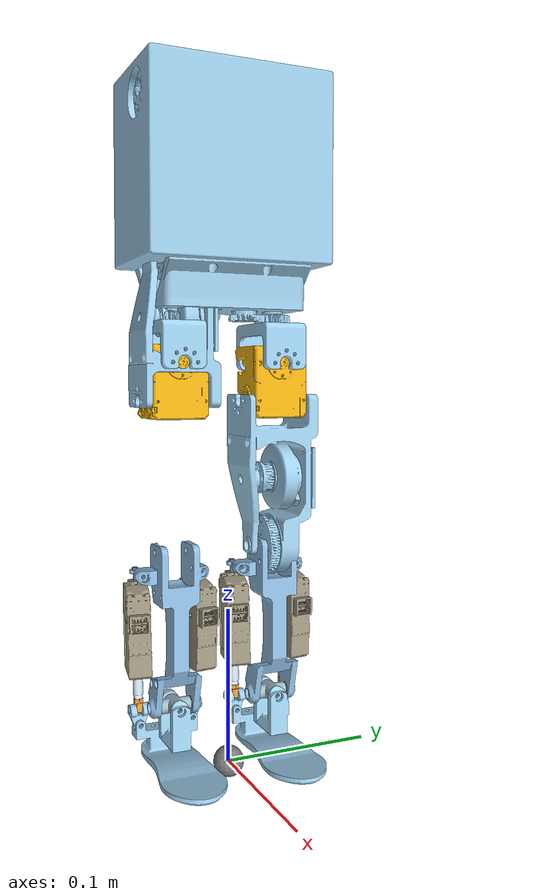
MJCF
<mujoco model="toddlerbot_legs">
  <compiler angle="radian" />
  <asset>
    <mesh name="body_link_visual" file="../assemblies/no_body/meshes/body_link_visual.stl" />
    <mesh name="body_link_collision" file="collisions/body_link_collision.stl" />
    <mesh name="left_hip_yaw_link_visual" file="../assemblies/left_3R+RH5_leg/meshes/left_hip_yaw_link_visual.stl" />
    <mesh name="left_hip_roll_link_visual" file="../assemblies/left_3R+RH5_leg/meshes/left_hip_roll_link_visual.stl" />
    <mesh name="left_hip_roll_link_collision" file="collisions/left_hip_roll_link_collision.stl" />
    <mesh name="left_hip_pitch_link_visual" file="../assemblies/left_3R+RH5_leg/meshes/left_hip_pitch_link_visual.stl" />
    <mesh name="left_hip_pitch_link_collision" file="collisions/left_hip_pitch_link_collision.stl" />
    <mesh name="left_calf_link_visual" file="../assemblies/left_3R+RH5_leg/meshes/left_calf_link_visual.stl" />
    <mesh name="left_calf_link_collision" file="collisions/left_calf_link_collision.stl" />
    <mesh name="left_ank_pitch_link_visual" file="../assemblies/left_3R+RH5_leg/meshes/left_ank_pitch_link_visual.stl" />
    <mesh name="left_ank_roll_link_visual" file="../assemblies/left_3R+RH5_leg/meshes/left_ank_roll_link_visual.stl" />
    <mesh name="left_ank_roll_link_collision" file="../assemblies/left_3R+RH5_leg/meshes/left_ank_roll_link_collision.stl" />
    <mesh name="left_ank_rr_link_visual" file="../assemblies/left_3R+RH5_leg/meshes/left_ank_rr_link_visual.stl" />
    <mesh name="left_12lf_rod_end_visual" file="../assemblies/left_3R+RH5_leg/meshes/left_12lf_rod_end_visual.stl" />
    <mesh name="left_ank_rr_link_2_visual" file="../assemblies/left_3R+RH5_leg/meshes/left_ank_rr_link_2_visual.stl" />
    <mesh name="left_12lf_rod_end_2_visual" file="../assemblies/left_3R+RH5_leg/meshes/left_12lf_rod_end_2_visual.stl" />
    <mesh name="left_ball_joint_container_visual" file="../assemblies/left_3R+RH5_leg/meshes/left_ball_joint_container_visual.stl" />
    <mesh name="left_ball_joint_ball_visual" file="../assemblies/left_3R+RH5_leg/meshes/left_ball_joint_ball_visual.stl" />
    <mesh name="left_12lf_visual" file="../assemblies/left_3R+RH5_leg/meshes/left_12lf_visual.stl" />
    <mesh name="left_12lf_rod_visual" file="../assemblies/left_3R+RH5_leg/meshes/left_12lf_rod_visual.stl" />
    <mesh name="left_ball_joint_container_2_visual" file="../assemblies/left_3R+RH5_leg/meshes/left_ball_joint_container_2_visual.stl" />
    <mesh name="left_ball_joint_ball_2_visual" file="../assemblies/left_3R+RH5_leg/meshes/left_ball_joint_ball_2_visual.stl" />
    <mesh name="left_12lf_2_visual" file="../assemblies/left_3R+RH5_leg/meshes/left_12lf_2_visual.stl" />
    <mesh name="left_12lf_rod_2_visual" file="../assemblies/left_3R+RH5_leg/meshes/left_12lf_rod_2_visual.stl" />
    <mesh name="right_hip_yaw_link_visual" file="../assemblies/right_3R+RH5_leg/meshes/right_hip_yaw_link_visual.stl" />
    <mesh name="right_hip_roll_link_visual" file="../assemblies/right_3R+RH5_leg/meshes/right_hip_roll_link_visual.stl" />
    <mesh name="right_hip_roll_link_collision" file="collisions/right_hip_roll_link_collision.stl" />
    <mesh name="right_hip_pitch_link_visual" file="../assemblies/right_3R+RH5_leg/meshes/right_hip_pitch_link_visual.stl" />
    <mesh name="right_hip_pitch_link_collision" file="collisions/right_hip_pitch_link_collision.stl" />
    <mesh name="right_calf_link_visual" file="../assemblies/right_3R+RH5_leg/meshes/right_calf_link_visual.stl" />
    <mesh name="right_calf_link_collision" file="collisions/right_calf_link_collision.stl" />
    <mesh name="right_ank_pitch_link_visual" file="../assemblies/right_3R+RH5_leg/meshes/right_ank_pitch_link_visual.stl" />
    <mesh name="right_ank_roll_link_visual" file="../assemblies/right_3R+RH5_leg/meshes/right_ank_roll_link_visual.stl" />
    <mesh name="right_ank_roll_link_collision" file="../assemblies/right_3R+RH5_leg/meshes/right_ank_roll_link_collision.stl" />
    <mesh name="right_ank_rr_link_visual" file="../assemblies/right_3R+RH5_leg/meshes/right_ank_rr_link_visual.stl" />
    <mesh name="right_12lf_rod_end_visual" file="../assemblies/right_3R+RH5_leg/meshes/right_12lf_rod_end_visual.stl" />
    <mesh name="right_ank_rr_link_2_visual" file="../assemblies/right_3R+RH5_leg/meshes/right_ank_rr_link_2_visual.stl" />
    <mesh name="right_12lf_rod_end_2_visual" file="../assemblies/right_3R+RH5_leg/meshes/right_12lf_rod_end_2_visual.stl" />
    <mesh name="right_ball_joint_container_visual" file="../assemblies/right_3R+RH5_leg/meshes/right_ball_joint_container_visual.stl" />
    <mesh name="right_ball_joint_ball_visual" file="../assemblies/right_3R+RH5_leg/meshes/right_ball_joint_ball_visual.stl" />
    <mesh name="right_12lf_visual" file="../assemblies/right_3R+RH5_leg/meshes/right_12lf_visual.stl" />
    <mesh name="right_12lf_rod_visual" file="../assemblies/right_3R+RH5_leg/meshes/right_12lf_rod_visual.stl" />
    <mesh name="right_ball_joint_container_2_visual" file="../assemblies/right_3R+RH5_leg/meshes/right_ball_joint_container_2_visual.stl" />
    <mesh name="right_ball_joint_ball_2_visual" file="../assemblies/right_3R+RH5_leg/meshes/right_ball_joint_ball_2_visual.stl" />
    <mesh name="right_12lf_2_visual" file="../assemblies/right_3R+RH5_leg/meshes/right_12lf_2_visual.stl" />
    <mesh name="right_12lf_rod_2_visual" file="../assemblies/right_3R+RH5_leg/meshes/right_12lf_rod_2_visual.stl" />
  </asset>
  <worldbody>
    <body name="body_link" pos="0 0 0" quat="1 0 0 0">
      <inertial pos="-0.014994 -0.000617 0.378655" quat="1.000000 0.000000 0.000000 0.000000" mass="1.00865345" diaginertia="4.68582e-03 3.97341e-03 2.41713e-03" />
      <freejoint />
      <site name="imu" size="0.01" pos="0.0 0 0.0" />
      <site name="torso" fromto="0.01 0 0.4 -0.01 0 0.4" type="cylinder" size="0.005 0.005 1" group="3" />
      <geom rgba="0.613972 0.803325 0.915409 1" mesh="body_link_visual" class="visual" />
      <geom rgba="0.613972 0.803325 0.915409 1" mesh="body_link_collision" class="collision" />
      <body name="hip_yaw_link" pos="-0.0094 0.034 0.285" quat="1 0 0 0">
        <inertial pos="0 0 -0.00983905" quat="0 0.707107 0 0.707107" mass="0.00902588" diaginertia="3.87214e-06 3.84085e-06 1.32305e-06" />
        <joint name="left_hip_yaw" pos="0 0 0" axis="0 0 1" limited="true" range="-0.785398 0.785398" damping="0.077" armature="0.0034" frictionloss="0.0434" />
        <geom rgba="0.615686 0.811765 0.929412 1" mesh="left_hip_yaw_link_visual" class="visual" />
        <body name="hip_roll_link" pos="0.019 0 -0.026" quat="0 0.707107 0 0.707107">
          <inertial pos="-0.0119998 -0.000495981 -0.0185041" quat="-0.273471 0.652073 -0.267709 0.654482" mass="0.0980124" diaginertia="2.78674e-05 2.68492e-05 2.02212e-05" />
          <joint name="left_hip_roll" pos="0 0 0" axis="0 0 1" limited="true" range="-0.785398 1.5708" damping="3.122" armature="0.1" frictionloss="0.0002" />
          <geom rgba="0.950187 0.706789 0.0616121 1" mesh="left_hip_roll_link_visual" class="visual" />
          <geom rgba="0.950187 0.706789 0.0616121 1" mesh="left_hip_roll_link_collision" class="collision" />
          <body name="left_hip_pitch_link" pos="-0.024 -0.019 -0.019" quat="0.5 -0.5 0.5 0.5">
            <inertial pos="-0.000219203 0.0528672 0.0146752" quat="0.675957 0.69839 0.172666 -0.15975" mass="0.0936117" diaginertia="6.26646e-05 6.22569e-05 2.15273e-05" />
            <joint name="left_hip_pitch" pos="0 0 0" axis="0 0 1" limited="true" range="-1.5708 1.5708" damping="1.286" armature="0.0032" frictionloss="0.0" />
            <geom rgba="0.616541 0.807279 0.921723 1" mesh="left_hip_pitch_link_visual" class="visual" />
            <geom rgba="0.616541 0.807279 0.921723 1" mesh="left_hip_pitch_link_collision" class="collision" />
            <body name="left_calf_link" pos="0 0.096 0.0274" quat="0 1 0 0">
              <inertial pos="-0.0038993 -0.0424193 0.00818649" quat="0.707628 0.706515 -0.00993164 -0.00118734" mass="0.0157824" diaginertia="1.47483e-05 1.4045e-05 1.89387e-06" />
              <joint name="left_knee" pos="0 0 0" axis="0 0 1" limited="true" range="0 1.5708" damping="1.142" armature="0.0" frictionloss="0.0319" />
              <geom rgba="0.551854 0.729722 0.876657 1" mesh="left_calf_link_visual" class="visual" />
              <geom rgba="0.551854 0.729722 0.876657 1" mesh="left_calf_link_collision" class="collision" />
              <body name="ank_pitch_link" pos="0 -0.1 -0.0062" quat="0 0.707107 -0.707107 0">
                <inertial pos="4.02697e-08 0.000595283 -0.0145999" quat="1 0 -2.35914e-06 0" mass="0.00422384" diaginertia="4.37053e-07 3.97827e-07 8.88586e-08" />
                <joint name="left_ank_pitch" pos="0 0 0" axis="0 0 1" limited="true" range="-0.785398 0.959931" damping="0.523" armature="0.0115" frictionloss="0.0005" />
                <geom rgba="0.631892 0.726687 0.783564 1" mesh="left_ank_pitch_link_visual" class="visual" />
                <body name="ank_roll_link" pos="0 0.0015 -0.0146" quat="0.5 -0.5 -0.5 -0.5">
                  <inertial pos="-3.28026e-07 0.0289226 0.00175005" quat="0.996871 -0.0790494 6.17315e-06 5.36738e-05" mass="0.013975" diaginertia="1.02121e-05 9.92043e-06 2.55434e-06" />
                  <joint name="left_ank_roll" pos="0 0 0" axis="0 0 1" limited="true" range="-0.785398 0.785398" damping="0.583" armature="0.0158" frictionloss="0.0003" />
                  <geom rgba="0.615686 0.811765 0.929412 1" mesh="left_ank_roll_link_visual" class="visual" />
                  <geom rgba="0.615686 0.811765 0.929412 1" mesh="left_ank_roll_link_collision" class="collision" />
                  <body name="ank_rr_link" pos="-0.018 0.016 -0.0206" quat="0.999956 0 0 -0.00938949">
                    <inertial pos="0 -0.00614477 0" quat="0.5 0.5 -0.5 0.5" mass="0.000425071" diaginertia="1.25044e-08 8.78432e-09 8.03017e-09" />
                    <joint name="left_ank_R11" pos="0 0 0" axis="0 0 1" limited="true" range="-1.5708 1.5708" />
                    <geom rgba="0.615686 0.811765 0.929412 1" mesh="left_ank_rr_link_visual" class="visual" />
                    <body name="12lf_rod_end" pos="0 -0.01 0" quat="0.707105 0.00154912 -0.707105 -0.00154912">
                      <inertial pos="-4.47352e-11 -0.00384222 6.43842e-06" quat="0.500199 0.499801 -0.499801 0.500199" mass="0.000854205" diaginertia="1.27035e-08 1.1841e-08 3.35496e-09" />
                      <joint name="left_ank_R21" pos="0 0 0" axis="0 0 1" limited="true" range="-1.5708 1.5708" />
                      <geom rgba="0.927718 0.610493 0.218477 1" mesh="left_12lf_rod_end_visual" class="visual" />
                    </body>
                  </body>
                  <body name="ank_rr_link_2" pos="0.018 0.016 -0.0206" quat="0 0.00933097 -0.999956 0">
                    <inertial pos="0 -0.00614477 0" quat="0.5 0.5 -0.5 0.5" mass="0.000425071" diaginertia="1.25044e-08 8.78432e-09 8.03017e-09" />
                    <joint name="left_ank_R12" pos="0 0 0" axis="0 0 1" limited="true" range="-1.5708 1.5708" />
                    <geom rgba="0.615686 0.811765 0.929412 1" mesh="left_ank_rr_link_2_visual" class="visual" />
                    <body name="12lf_rod_end_2" pos="0 -0.01 0" quat="0.707105 -0.00154102 -0.707105 0.00154102">
                      <inertial pos="-4.47352e-11 -0.00384222 6.43842e-06" quat="0.500199 0.499801 -0.499801 0.500199" mass="0.000854205" diaginertia="1.27035e-08 1.1841e-08 3.35496e-09" />
                      <joint name="left_ank_R22" pos="0 0 0" axis="0 0 1" limited="true" range="-1.5708 1.5708" />
                      <geom rgba="0.927718 0.610493 0.218477 1" mesh="left_12lf_rod_end_2_visual" class="visual" />
                    </body>
                  </body>
                </body>
              </body>
              <body name="ball_joint_container" pos="0.008 -0.015 0.0283" quat="0.00663937 -0.707076 -0.00663937 0.707076">
                <inertial pos="0 0 -0.00971253" quat="0.707107 0 0 0.707107" mass="4.80374e-05" diaginertia="8.47542e-10 7.18655e-10 1.86253e-10" />
                <joint name="left_ank_B11" pos="0 0 0" axis="0 0 1" limited="true" range="-0.785398 0.785398" />
                <geom rgba="0.615686 0.811765 0.929412 1" mesh="left_ball_joint_container_visual" class="visual" />
                <body name="ball_joint_ball" pos="0 0 -0.0115" quat="0.00154912 -0.707105 0.00154912 -0.707105">
                  <inertial pos="0 -0.00103087 0" quat="0.707107 0.707107 0 0" mass="4.40538e-05" diaginertia="3.1285e-10 3.12853e-10 6.25696e-11" />
                  <joint name="left_ank_B21" pos="0 0 0" axis="0 0 1" limited="true" range="-0.785398 0.785398" />
                  <geom rgba="0.32913 0.443105 0.692049 1" mesh="left_ball_joint_ball_visual" class="visual" />
                  <body name="12lf" pos="0 -0.00643875 0" quat="0.70458 -0.70458 0.0597268 0.0597268">
                    <inertial pos="0.00490842 -0.000138024 -0.029947" quat="0.709913 0.00132323 0.0043477 0.704274" mass="0.0447822" diaginertia="1.81889e-05 1.52606e-05 5.14874e-06" />
                    <joint name="left_ank_B31" pos="0 0 0" axis="0 0 1" limited="true" range="-0.785398 0.785398" />
                    <geom rgba="0.620044 0.588367 0.498971 1" mesh="left_12lf_visual" class="visual" />
                    <body name="12lf_rod" pos="2.27221e-06 0 -0.07478" quat="0 -0.452653 0.891687 0">
                      <inertial pos="-6.32221e-07 4.69333e-07 -0.0128934" quat="1 -2.00488e-05 -2.69482e-05 -5.4028e-10" mass="0.00250883" diaginertia="2.69445e-07 2.69445e-07 1.78098e-08" />
                      <joint name="left_ank_act1" pos="0 0 0" axis="0 0 1" type="slide" limited="true" range="0 0.04" />
                      <geom rgba="0.802503 0.893406 0.944918 1" mesh="left_12lf_rod_visual" class="visual" />
                    </body>
                  </body>
                </body>
              </body>
              <body name="ball_joint_container_2" pos="0.008 -0.015 -0.0115" quat="0.707076 -0.00659799 -0.707076 0.00659799">
                <inertial pos="0 0 -0.00971253" quat="0.707107 0 0 0.707107" mass="4.80374e-05" diaginertia="8.47542e-10 7.18655e-10 1.86253e-10" />
                <joint name="left_ank_B12" pos="0 0 0" axis="0 0 1" limited="true" range="-0.785398 0.785398" />
                <geom rgba="0.615686 0.811765 0.929412 1" mesh="left_ball_joint_container_2_visual" class="visual" />
                <body name="ball_joint_ball_2" pos="0 0 -0.0115" quat="0.707105 -0.00154102 -0.707105 0.00154102">
                  <inertial pos="0 -0.00103087 0" quat="0.707107 0.707107 0 0" mass="4.40538e-05" diaginertia="3.1285e-10 3.12853e-10 6.25696e-11" />
                  <joint name="left_ank_B22" pos="0 0 0" axis="0 0 1" limited="true" range="-0.785398 0.785398" />
                  <geom rgba="0.32913 0.443105 0.692049 1" mesh="left_ball_joint_ball_2_visual" class="visual" />
                  <body name="12lf_2" pos="0 -0.00643875 0" quat="0.704247 -0.704247 -0.0635296 -0.0635296">
                    <inertial pos="0.00490842 -0.000138024 -0.029947" quat="0.709913 0.00132323 0.0043477 0.704274" mass="0.0447822" diaginertia="1.81889e-05 1.52606e-05 5.14874e-06" />
                    <joint name="left_ank_B32" pos="0 0 0" axis="0 0 1" limited="true" range="-0.785398 0.785398" />
                    <geom rgba="0.620044 0.588367 0.498971 1" mesh="left_12lf_2_visual" class="visual" />
                    <body name="12lf_rod_2" pos="2.27221e-06 0 -0.07478" quat="0 -0.452653 0.891687 0">
                      <inertial pos="-6.32221e-07 4.69333e-07 -0.0128934" quat="1 -2.00488e-05 -2.69482e-05 -5.4028e-10" mass="0.00250883" diaginertia="2.69445e-07 2.69445e-07 1.78098e-08" />
                      <joint name="left_ank_act2" pos="0 0 0" axis="0 0 1" type="slide" limited="true" range="0 0.04" />
                      <geom rgba="0.802503 0.893406 0.944918 1" mesh="left_12lf_rod_2_visual" class="visual" />
                    </body>
                  </body>
                </body>
              </body>
            </body>
          </body>
        </body>
      </body>
      <body name="hip_yaw_link_2" pos="-0.0094 -0.034 0.285" quat="1 0 0 0">
        <inertial pos="0 0 -0.00983905" quat="0 0.707107 0 0.707107" mass="0.00902588" diaginertia="3.87214e-06 3.84085e-06 1.32305e-06" />
        <joint name="right_hip_yaw" pos="0 0 0" axis="0 0 1" limited="true" range="-0.785398 0.785398" damping="0.077" armature="0.0034" frictionloss="0.0434" />
        <geom rgba="0.615686 0.811765 0.929412 1" mesh="right_hip_yaw_link_visual" class="visual" />
        <body name="hip_roll_link_2" pos="0.019 0 -0.026" quat="0 0.707107 0 0.707107">
          <inertial pos="-0.0119998 -0.000495981 -0.0185041" quat="-0.273471 0.652073 -0.267709 0.654482" mass="0.0980124" diaginertia="2.78674e-05 2.68492e-05 2.02212e-05" />
          <joint name="right_hip_roll" pos="0 0 0" axis="0 0 1" limited="true" range="-1.5708 0.785398" damping="3.122" armature="0.1" frictionloss="0.0002" />
          <geom rgba="0.950187 0.706789 0.0616121 1" mesh="right_hip_roll_link_visual" class="visual" />
          <geom rgba="0.950187 0.706789 0.0616121 1" mesh="right_hip_roll_link_collision" class="collision" />
          <body name="right_hip_pitch_link" pos="-0.024 -0.019 -0.019" quat="0.5 -0.5 -0.5 -0.5">
            <inertial pos="-1.30337e-05 -0.0528672 0.0233248" quat="0.694519 0.719422 -0.00407443 0.00772147" mass="0.0936117" diaginertia="6.25764e-05 6.23465e-05 2.15349e-05" />
            <joint name="right_hip_pitch" pos="0 0 0" axis="0 0 1" limited="true" range="-1.5708 1.5708" damping="1.286" armature="0.0032" frictionloss="0.0" />
            <geom rgba="0.616541 0.807279 0.921723 1" mesh="right_hip_pitch_link_visual" class="visual" />
            <geom rgba="0.616541 0.807279 0.921723 1" mesh="right_hip_pitch_link_collision" class="collision" />
            <body name="right_calf_link" pos="0 -0.096 0.0106" quat="0 0 0 1">
              <inertial pos="-0.00389996 0.0424094 0.00818387" quat="0.706581 0.70756 0.0011042 0.0100571" mass="0.0157797" diaginertia="1.47387e-05 1.40359e-05 1.89319e-06" />
              <joint name="right_knee" pos="0 0 0" axis="0 0 1" limited="true" range="-1.5708 0" damping="1.142" armature="0.0" frictionloss="0.0319" />
              <geom rgba="0.551838 0.729737 0.876696 1" mesh="right_calf_link_visual" class="visual" />
              <geom rgba="0.551838 0.729737 0.876696 1" mesh="right_calf_link_collision" class="collision" />
              <body name="ank_pitch_link_2" pos="0 0.1 -0.0062" quat="0 -0.707107 0.707107 0">
                <inertial pos="4.02697e-08 0.000595283 -0.0145999" quat="1 0 -2.35914e-06 0" mass="0.00422384" diaginertia="4.37053e-07 3.97827e-07 8.88586e-08" />
                <joint name="right_ank_pitch" pos="0 0 0" axis="0 0 1" limited="true" range="-0.785398 0.959931" damping="0.523" armature="0.0115" frictionloss="0.0005" />
                <geom rgba="0.631892 0.726687 0.783564 1" mesh="right_ank_pitch_link_visual" class="visual" />
                <body name="ank_roll_link_2" pos="0 0.0015 -0.0146" quat="0.5 -0.5 0.5 0.5">
                  <inertial pos="-1.72813e-07 0.0289226 0.00175013" quat="0.996871 -0.07905 7.3645e-06 4.94885e-05" mass="0.013975" diaginertia="1.02121e-05 9.92044e-06 2.55435e-06" />
                  <joint name="right_ank_roll" pos="0 0 0" axis="0 0 1" limited="true" range="-0.785398 0.785398" damping="0.583" armature="0.0158" frictionloss="0.0003" />
                  <geom rgba="0.615686 0.811765 0.929412 1" mesh="right_ank_roll_link_visual" class="visual" />
                  <geom rgba="0.615686 0.811765 0.929412 1" mesh="right_ank_roll_link_collision" class="collision" />
                  <body name="ank_rr_link_3" pos="-0.018 0.016 -0.0206" quat="0.999956 0 0 -0.00938949">
                    <inertial pos="0 -0.00614477 0" quat="0.5 0.5 -0.5 0.5" mass="0.000425071" diaginertia="1.25044e-08 8.78432e-09 8.03017e-09" />
                    <joint name="right_ank_R11" pos="0 0 0" axis="0 0 1" limited="true" range="-1.5708 1.5708" />
                    <geom rgba="0.615686 0.811765 0.929412 1" mesh="right_ank_rr_link_visual" class="visual" />
                    <body name="12lf_rod_end_3" pos="0 -0.01 0" quat="0.707105 0.00154912 -0.707105 -0.00154912">
                      <inertial pos="-4.47352e-11 -0.00384222 6.43842e-06" quat="0.500199 0.499801 -0.499801 0.500199" mass="0.000854205" diaginertia="1.27035e-08 1.1841e-08 3.35496e-09" />
                      <joint name="right_ank_R21" pos="0 0 0" axis="0 0 1" limited="true" range="-1.5708 1.5708" />
                      <geom rgba="0.927718 0.610493 0.218477 1" mesh="right_12lf_rod_end_visual" class="visual" />
                    </body>
                  </body>
                  <body name="ank_rr_link_4" pos="0.018 0.016 -0.0206" quat="0 -0.00933097 0.999956 0">
                    <inertial pos="0 -0.00614477 0" quat="0.5 0.5 -0.5 0.5" mass="0.000425071" diaginertia="1.25044e-08 8.78432e-09 8.03017e-09" />
                    <joint name="right_ank_R12" pos="0 0 0" axis="0 0 1" limited="true" range="-1.5708 1.5708" />
                    <geom rgba="0.615686 0.811765 0.929412 1" mesh="right_ank_rr_link_2_visual" class="visual" />
                    <body name="12lf_rod_end_4" pos="0 -0.01 0" quat="0.707105 -0.00154102 -0.707105 0.00154102">
                      <inertial pos="-4.47352e-11 -0.00384222 6.43842e-06" quat="0.500199 0.499801 -0.499801 0.500199" mass="0.000854205" diaginertia="1.27035e-08 1.1841e-08 3.35496e-09" />
                      <joint name="right_ank_R22" pos="0 0 0" axis="0 0 1" limited="true" range="-1.5708 1.5708" />
                      <geom rgba="0.927718 0.610493 0.218477 1" mesh="right_12lf_rod_end_2_visual" class="visual" />
                    </body>
                  </body>
                </body>
              </body>
              <body name="ball_joint_container_3" pos="0.008 0.015 -0.0115" quat="0.707076 0.00663937 -0.707076 -0.00663937">
                <inertial pos="0 0 -0.00971253" quat="0.707107 0 0 0.707107" mass="4.80374e-05" diaginertia="8.47542e-10 7.18655e-10 1.86253e-10" />
                <joint name="right_ank_B11" pos="0 0 0" axis="0 0 1" limited="true" range="-0.785398 0.785398" />
                <geom rgba="0.615686 0.811765 0.929412 1" mesh="right_ball_joint_container_visual" class="visual" />
                <body name="ball_joint_ball_3" pos="0 0 -0.0115" quat="0.00154912 -0.707105 0.00154912 -0.707105">
                  <inertial pos="0 -0.00103087 0" quat="0.707107 0.707107 0 0" mass="4.40538e-05" diaginertia="3.1285e-10 3.12853e-10 6.25696e-11" />
                  <joint name="right_ank_B21" pos="0 0 0" axis="0 0 1" limited="true" range="-0.785398 0.785398" />
                  <geom rgba="0.32913 0.443105 0.692049 1" mesh="right_ball_joint_ball_visual" class="visual" />
                  <body name="12lf_3" pos="0 -0.00643875 0" quat="0.70458 -0.70458 0.0597268 0.0597268">
                    <inertial pos="0.00490842 -0.000138024 -0.029947" quat="0.709913 0.00132323 0.0043477 0.704274" mass="0.0447822" diaginertia="1.81889e-05 1.52606e-05 5.14874e-06" />
                    <joint name="right_ank_B31" pos="0 0 0" axis="0 0 1" limited="true" range="-0.785398 0.785398" />
                    <geom rgba="0.620044 0.588367 0.498971 1" mesh="right_12lf_visual" class="visual" />
                    <body name="12lf_rod_3" pos="2.27221e-06 0 -0.07478" quat="0 -0.452653 0.891687 0">
                      <inertial pos="-6.32221e-07 4.69333e-07 -0.0128934" quat="1 -2.00488e-05 -2.69482e-05 -5.4028e-10" mass="0.00250883" diaginertia="2.69445e-07 2.69445e-07 1.78098e-08" />
                      <joint name="right_ank_act1" pos="0 0 0" axis="0 0 1" type="slide" limited="true" range="0 0.04" />
                      <geom rgba="0.802503 0.893406 0.944918 1" mesh="right_12lf_rod_visual" class="visual" />
                    </body>
                  </body>
                </body>
              </body>
              <body name="ball_joint_container_4" pos="0.008 0.015 0.0283" quat="0.707076 -0.00659799 -0.707076 0.00659799">
                <inertial pos="0 0 -0.00971253" quat="0.707107 0 0 0.707107" mass="4.80374e-05" diaginertia="8.47542e-10 7.18655e-10 1.86253e-10" />
                <joint name="right_ank_B12" pos="0 0 0" axis="0 0 1" limited="true" range="-0.785398 0.785398" />
                <geom rgba="0.615686 0.811765 0.929412 1" mesh="right_ball_joint_container_2_visual" class="visual" />
                <body name="ball_joint_ball_4" pos="0 0 -0.0115" quat="0.00154102 -0.707105 0.00154102 -0.707105">
                  <inertial pos="0 -0.00103087 0" quat="0.707107 0.707107 0 0" mass="4.40538e-05" diaginertia="3.1285e-10 3.12853e-10 6.25696e-11" />
                  <joint name="right_ank_B22" pos="0 0 0" axis="0 0 1" limited="true" range="-0.785398 0.785398" />
                  <geom rgba="0.32913 0.443105 0.692049 1" mesh="right_ball_joint_ball_2_visual" class="visual" />
                  <body name="12lf_4" pos="0 -0.00643875 0" quat="0.704247 -0.704247 -0.0635296 -0.0635296">
                    <inertial pos="0.00490842 -0.000138024 -0.029947" quat="0.709913 0.00132323 0.0043477 0.704274" mass="0.0447822" diaginertia="1.81889e-05 1.52606e-05 5.14874e-06" />
                    <joint name="right_ank_B32" pos="0 0 0" axis="0 0 1" limited="true" range="-0.785398 0.785398" />
                    <geom rgba="0.620044 0.588367 0.498971 1" mesh="right_12lf_2_visual" class="visual" />
                    <body name="12lf_rod_4" pos="2.27221e-06 0 -0.07478" quat="0 0.452653 -0.891687 0">
                      <inertial pos="-6.32221e-07 4.69333e-07 -0.0128934" quat="1 -2.00488e-05 -2.69482e-05 -5.4028e-10" mass="0.00250883" diaginertia="2.69445e-07 2.69445e-07 1.78098e-08" />
                      <joint name="right_ank_act2" pos="0 0 0" axis="0 0 1" type="slide" limited="true" range="0 0.04" />
                      <geom rgba="0.802503 0.893406 0.944918 1" mesh="right_12lf_rod_2_visual" class="visual" />
                    </body>
                  </body>
                </body>
              </body>
            </body>
          </body>
        </body>
      </body>
    </body>
  </worldbody>
  <sensor>
    <framequat name="orientation" objtype="site" noise="0.001" objname="imu" />
    <framepos name="position" objtype="site" noise="0.001" objname="imu" />
    <gyro name="angular_velocity" site="imu" noise="0.005" cutoff="34.9" />
    <velocimeter name="linear_velocity" site="imu" noise="0.001" cutoff="30" />
    <accelerometer name="linear_acceleration" site="imu" noise="0.005" cutoff="157" />
    <magnetometer name="magnetometer" site="imu" />
  </sensor>
  <actuator>
    <position name="left_hip_yaw_act" joint="left_hip_yaw" kp="3.125" kv="0.0" ctrlrange="-0.785398 0.785398" />
    <position name="left_hip_roll_act" joint="left_hip_roll" kp="26.0" kv="0.0" ctrlrange="-0.785398 1.5708" />
    <position name="left_hip_pitch_act" joint="left_hip_pitch" kp="13.0" kv="0.0" ctrlrange="-1.5708 1.5708" />
    <position name="left_knee_act" joint="left_knee" kp="40.0" kv="0.0" ctrlrange="0 1.5708" />
    <position name="left_ank_pitch_act" joint="left_ank_pitch" kp="10.0" kv="0.0" ctrlrange="-0.785398 0.959931" />
    <position name="left_ank_roll_act" joint="left_ank_roll" kp="10.0" kv="0.0" ctrlrange="-0.785398 0.785398" />
    <position name="right_hip_yaw_act" joint="right_hip_yaw" kp="3.125" kv="0.0" ctrlrange="-0.785398 0.785398" />
    <position name="right_hip_roll_act" joint="right_hip_roll" kp="26.0" kv="0.0" ctrlrange="-1.5708 0.785398" />
    <position name="right_hip_pitch_act" joint="right_hip_pitch" kp="13.0" kv="0.0" ctrlrange="-1.5708 1.5708" />
    <position name="right_knee_act" joint="right_knee" kp="40.0" kv="0.0" ctrlrange="-1.5708 0" />
    <position name="right_ank_pitch_act" joint="right_ank_pitch" kp="10.0" kv="0.0" ctrlrange="-0.785398 0.959931" />
    <position name="right_ank_roll_act" joint="right_ank_roll" kp="10.0" kv="0.0" ctrlrange="-0.785398 0.785398" />
  </actuator>
  <equality>
    <weld body1="12lf_rod_end" body2="12lf_rod" solimp="0.9999 0.9999 0.001 0.5 2" solref="0.0001 1" />
    <weld body1="12lf_rod_end_2" body2="12lf_rod_2" solimp="0.9999 0.9999 0.001 0.5 2" solref="0.0001 1" />
    <weld body1="12lf_rod_end_3" body2="12lf_rod_3" solimp="0.9999 0.9999 0.001 0.5 2" solref="0.0001 1" />
    <weld body1="12lf_rod_end_4" body2="12lf_rod_4" solimp="0.9999 0.9999 0.001 0.5 2" solref="0.0001 1" />
  </equality>
  <default>
    <position forcelimited="false" />
    <geom type="mesh" condim="4" solref=".001 2" friction="0.9 0.2 0.2" />
    <default class="visual">
      <geom contype="0" conaffinity="0" group="2" density="0" />
    </default>
    <default class="collision">
      <geom group="3" />
    </default>
  </default>
  <contact>
    <exclude body1="body_link" body2="hip_roll_link" />
    <exclude body1="body_link" body2="left_hip_pitch_link" />
    <exclude body1="body_link" body2="left_calf_link" />
    <exclude body1="body_link" body2="ank_roll_link" />
    <exclude body1="body_link" body2="hip_roll_link_2" />
    <exclude body1="body_link" body2="right_hip_pitch_link" />
    <exclude body1="body_link" body2="right_calf_link" />
    <exclude body1="body_link" body2="ank_roll_link_2" />
    <exclude body1="hip_roll_link" body2="left_hip_pitch_link" />
    <exclude body1="hip_roll_link" body2="left_calf_link" />
    <exclude body1="hip_roll_link" body2="ank_roll_link" />
    <exclude body1="left_hip_pitch_link" body2="left_calf_link" />
    <exclude body1="left_hip_pitch_link" body2="ank_roll_link" />
    <exclude body1="left_calf_link" body2="ank_roll_link" />
    <exclude body1="hip_roll_link_2" body2="right_hip_pitch_link" />
    <exclude body1="hip_roll_link_2" body2="right_calf_link" />
    <exclude body1="hip_roll_link_2" body2="ank_roll_link_2" />
    <exclude body1="right_hip_pitch_link" body2="right_calf_link" />
    <exclude body1="right_hip_pitch_link" body2="ank_roll_link_2" />
    <exclude body1="right_calf_link" body2="ank_roll_link_2" />
  </contact>
</mujoco>
